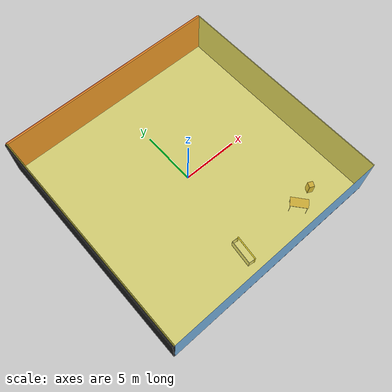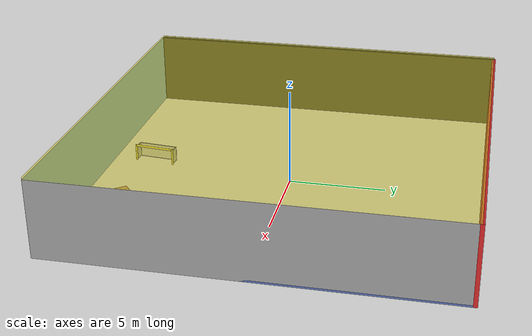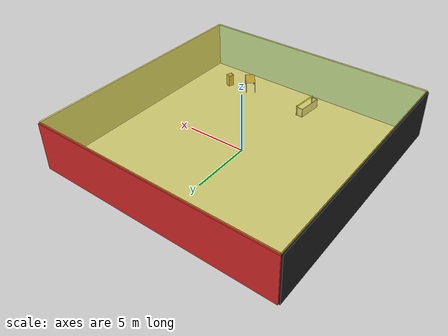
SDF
<sdf version="1.4">
 <world name="default">
  <physics type="ode">
   <max_step_size>0.001</max_step_size>
   <real_time_factor>1</real_time_factor>
   <real_time_update_rate>1000</real_time_update_rate>
   <gravity>0 0 -9.8</gravity>
  </physics>
  <scene><ambient>0.4 0.4 0.4 1</ambient><background>0.7 0.7 0.7 1</background><shadows>1</shadows></scene>
  <model name="Surrounding">
   <static>1</static>
   <link name="Ceiling">
    <collision name="Ceiling_Collision"><geometry><box><size>20 20 0.1</size></box></geometry></collision>
    <visual name="Ceiling_Visual">
     <geometry><box><size>20 20 0.1</size></box></geometry>
     <material>
      <script>
       <uri>file://media/materials/scripts/gazebo.material</uri>
       <name>Gazebo/YellowTransparent</name>
      </script>
     </material>
    </visual>
    <pose>0 0 4.05 0 0 0</pose>
   </link>
   <link name="Wall_South">
    <collision name="Wall_South_Collision">
     <geometry><box><size>20 0 4</size></box></geometry>
     <pose>0 0 2 0 -0 0</pose>
    </collision>
    <visual name="Wall_South_Visual">
     <pose>0 0 2 0 -0 0</pose>
     <geometry><box><size>20 0 4</size></box></geometry>
     <material>
      <script><uri>file://media/materials/scripts/gazebo.material</uri><name>Gazebo/SkyBlue</name></script>
     </material>
    </visual>
    <velocity_decay><linear>0</linear><angular>0</angular></velocity_decay>
    <pose>0 -10 0 0 -0 0</pose>
   </link>
   <link name="Wall_East">
    <collision name="Wall_21_Collision">
     <geometry><box><size>20 0 4</size></box></geometry>
     <pose>0 0 2 0 -0 0</pose>
    </collision>
    <visual name="Wall_21_Visual">
     <pose>0 0 2 0 -0 0</pose>
     <geometry><box><size>20 0 4</size></box></geometry>
     <material>
      <script><uri>file://media/materials/scripts/gazebo.material</uri><name>Gazebo/Grey</name></script>
     </material>
    </visual>
    <velocity_decay><linear>0</linear><angular>0</angular></velocity_decay>
    <pose>10 0 0 0 -0 1.5708</pose>
   </link>
   <link name="Wall_North">
    <collision name="Wall_22_Collision">
     <geometry><box><size>20 0.2 4</size></box></geometry>
     <pose>0 0 2 0 -0 0</pose>
    </collision>
    <visual name="Wall_22_Visual">
     <pose>0 0 2 0 -0 0</pose>
     <geometry><box><size>20 0.2 4</size></box></geometry>
     <material>
      <script><uri>file://media/materials/scripts/gazebo.material</uri><name>Gazebo/RedBright</name></script>
     </material>
    </visual>
    <velocity_decay><linear>0</linear><angular>0</angular></velocity_decay>
    <pose>0 10 0 0 -0 0</pose>
   </link>
   <link name="Wall_West">
    <collision name="Wall_23_Collision">
     <geometry><box><size>20 0.2 4</size></box></geometry>
     <pose>0 0 2 0 -0 0</pose>
    </collision>
    <visual name="Wall_23_Visual">
     <pose>0 0 2 0 -0 0</pose>
     <geometry><box><size>20 0.2 4</size></box></geometry>
     <material>
      <script><uri>file://media/materials/scripts/gazebo.material</uri><name>Gazebo/Black</name></script>
     </material>
    </visual>
    <velocity_decay><linear>0</linear><angular>0</angular></velocity_decay>
    <pose>-10 0 0 0 0 -1.5708</pose>
   </link>
   <link name="Ground_link">
    <collision name="collision">
     <pose>0 0 .05 0 -0 0</pose>
     <geometry><box><size>20 20 0.1</size></box></geometry>
    </collision>
    <visual name="visual">
     <pose>0 0 .05 0 -0 0</pose>
     <geometry><box><size>20 20 0.1</size></box></geometry>
     <material>
      <script><uri>file://media/materials/scripts/gazebo.material</uri><name>Gazebo/BlueTransparent</name></script>
     </material>
    </visual>
   </link>
   <static>1</static>
  </model>
  <spherical_coordinates>
   <surface_model>EARTH_WGS84</surface_model>
   <latitude_deg>0</latitude_deg>
   <longitude_deg>0</longitude_deg>
   <elevation>0</elevation>
   <heading_deg>0</heading_deg>
  </spherical_coordinates>
  <light name="lightball_0" type="diffuse">
   <diffuse>0.8 0.8 0.8 1</diffuse>
   <specular>0.2 0.2 0.2 1</specular>
   <attenuation>
    <range>100</range>
    <constant>0.7</constant>
    <linear>0.01</linear>
    <quadratic>0.001</quadratic>
   </attenuation>
   <direction>-0.5 0.1 -0.9</direction>
   <pose>-6.29825450209 -7.67875696068 2.93628657322 0 0 0</pose>
  </light>
  <light name="lightball_1" type="diffuse">
   <diffuse>0.8 0.8 0.8 1</diffuse>
   <specular>0.2 0.2 0.2 1</specular>
   <attenuation>
    <range>100</range>
    <constant>0.7</constant>
    <linear>0.01</linear>
    <quadratic>0.001</quadratic>
   </attenuation>
   <direction>-0.5 0.1 -0.9</direction>
   <pose>7.89326094423 3.42830210088 2.65780823654 0 0 0</pose>
  </light>
  <light name="lightball_2" type="diffuse">
   <diffuse>0.8 0.8 0.8 1</diffuse>
   <specular>0.2 0.2 0.2 1</specular>
   <attenuation>
    <range>100</range>
    <constant>0.7</constant>
    <linear>0.01</linear>
    <quadratic>0.001</quadratic>
   </attenuation>
   <direction>-0.5 0.1 -0.9</direction>
   <pose>-7.03376420995 2.16458541419 2.96522420775 0 0 0</pose>
  </light>
  <light name="lightball_3" type="diffuse">
   <diffuse>0.8 0.8 0.8 1</diffuse>
   <specular>0.2 0.2 0.2 1</specular>
   <attenuation>
    <range>100</range>
    <constant>0.7</constant>
    <linear>0.01</linear>
    <quadratic>0.001</quadratic>
   </attenuation>
   <direction>-0.5 0.1 -0.9</direction>
   <pose>-2.39658469802 1.64151445667 3.49196372608 0 0 0</pose>
  </light>
  <light name="lightball_4" type="diffuse">
   <diffuse>0.8 0.8 0.8 1</diffuse>
   <specular>0.2 0.2 0.2 1</specular>
   <attenuation>
    <range>100</range>
    <constant>0.7</constant>
    <linear>0.01</linear>
    <quadratic>0.001</quadratic>
   </attenuation>
   <direction>-0.5 0.1 -0.9</direction>
   <pose>2.94295164099 -3.13632376118 1.06405684287 0 0 0</pose>
  </light>
  <light name="lightball_5" type="diffuse">
   <diffuse>0.8 0.8 0.8 1</diffuse>
   <specular>0.2 0.2 0.2 1</specular>
   <attenuation>
    <range>100</range>
    <constant>0.7</constant>
    <linear>0.01</linear>
    <quadratic>0.001</quadratic>
   </attenuation>
   <direction>-0.5 0.1 -0.9</direction>
   <pose>3.75843006989 2.46659435994 1.1008642024 0 0 0</pose>
  </light>
  <light name="lightball_6" type="diffuse">
   <diffuse>0.8 0.8 0.8 1</diffuse>
   <specular>0.2 0.2 0.2 1</specular>
   <attenuation>
    <range>100</range>
    <constant>0.7</constant>
    <linear>0.01</linear>
    <quadratic>0.001</quadratic>
   </attenuation>
   <direction>-0.5 0.1 -0.9</direction>
   <pose>-2.38758750591 5.73126238313 1.70223591651 0 0 0</pose>
  </light>
  <light name="lightball_7" type="diffuse">
   <diffuse>0.8 0.8 0.8 1</diffuse>
   <specular>0.2 0.2 0.2 1</specular>
   <attenuation>
    <range>100</range>
    <constant>0.7</constant>
    <linear>0.01</linear>
    <quadratic>0.001</quadratic>
   </attenuation>
   <direction>-0.5 0.1 -0.9</direction>
   <pose>-5.64229312907 -1.08543398349 0.895239236696 0 0 0</pose>
  </light>
  <include>
   <uri>model://robocup_3Dsim_goal</uri>
   <pose>-0.842881895218 -7.73142110665 0 0 0 3.03894798854</pose>
  </include>
  <include><uri>model://table</uri><pose>4.87848516922 -7.83551400326 0 0 0 2.26058147447</pose></include>
  <include><uri>model://cabinet</uri><pose>6.7576528803 -7.35111714289 0 0 0 2.70118900178</pose></include>
 </world>
</sdf>

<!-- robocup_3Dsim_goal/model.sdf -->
<sdf version="1.5">
  <model name="robocup_3d_goal">
    <static>true</static>
    <link name="left_post">
      <pose>0 1.05 0.45 0 0 0</pose>
      <collision name="collision">
        <geometry>
          <cylinder>
            <radius>0.05</radius>
            <length>0.9</length>
          </cylinder>
        </geometry>
      </collision>
      <visual name="visual">
        <geometry>
          <cylinder>
            <radius>0.05</radius>
            <length>0.9</length>
          </cylinder>
        </geometry>
        <material>
          <script>
            <uri>file://media/materials/scripts/gazebo.material</uri>
            <name>Gazebo/ZincYellow</name>
          </script>
        </material>
      </visual>
    </link>
    <link name="left_support_horiz_lower">
      <pose>0.30 1.05 0.01 0 0 0</pose>
      <collision name="collision">
        <geometry>
          <box>
            <size>0.50 0.02 0.02</size>
          </box>
        </geometry>
      </collision>
      <visual name="visual">
        <geometry>
          <box>
            <size>0.50 0.02 0.02</size>
          </box>
        </geometry>
        <material>
          <script>
            <uri>file://media/materials/scripts/gazebo.material</uri>
            <name>Gazebo/White</name>
          </script>
        </material>
      </visual>
    </link>
    <link name="left_support_horiz_upper">
      <pose>0.30 1.05 0.79 0 0 0</pose>
      <collision name="collision">
        <geometry>
          <box>
            <size>0.50 0.02 0.02</size>
          </box>
        </geometry>
      </collision>
      <visual name="visual">
        <geometry>
          <box>
            <size>0.50 0.02 0.02</size>
          </box>
        </geometry>
        <material>
          <script>
            <uri>file://media/materials/scripts/gazebo.material</uri>
            <name>Gazebo/White</name>
          </script>
        </material>
      </visual>
    </link>
    <link name="left_support_vertical">
      <pose>0.56 1.05 0.4 0 1.5708 0</pose>
      <collision name="collision">
        <geometry>
          <box>
            <size>0.80 0.02 0.02</size>
          </box>
        </geometry>
      </collision>
      <visual name="visual">
        <geometry>
          <box>
            <size>0.80 0.02 0.02</size>
          </box>
        </geometry>
        <material>
          <script>
            <uri>file://media/materials/scripts/gazebo.material</uri>
            <name>Gazebo/White</name>
          </script>
        </material>
      </visual>
    </link>
    <link name="right_support_horiz_lower">
      <pose>0.30 -1.05 0.01 0 0 0</pose>
      <collision name="collision">
        <geometry>
          <box>
            <size>0.50 0.02 0.02</size>
          </box>
        </geometry>
      </collision>
      <visual name="visual">
        <geometry>
          <box>
            <size>0.50 0.02 0.02</size>
          </box>
        </geometry>
        <material>
          <script>
            <uri>file://media/materials/scripts/gazebo.material</uri>
            <name>Gazebo/White</name>
          </script>
        </material>
      </visual>
    </link>
    <link name="right_support_horiz_upper">
      <pose>0.30 -1.05 0.79 0 0 0</pose>
      <collision name="collision">
        <geometry>
          <box>
            <size>0.50 0.02 0.02</size>
          </box>
        </geometry>
      </collision>
      <visual name="visual">
        <geometry>
          <box>
            <size>0.50 0.02 0.02</size>
          </box>
        </geometry>
        <material>
          <script>
            <uri>file://media/materials/scripts/gazebo.material</uri>
            <name>Gazebo/White</name>
          </script>
        </material>
      </visual>
    </link>
    <link name="right_support_vertical">
      <pose>0.56 -1.05 0.4 0 1.5708 0</pose>
      <collision name="collision">
        <geometry>
          <box>
            <size>0.80 0.02 0.02</size>
          </box>
        </geometry>
      </collision>
      <visual name="visual">
        <geometry>
          <box>
            <size>0.80 0.02 0.02</size>
          </box>
        </geometry>
        <material>
          <script>
            <uri>file://media/materials/scripts/gazebo.material</uri>
            <name>Gazebo/White</name>
          </script>
        </material>
      </visual>
    </link>
    <link name="center_support_horiz_lower">
      <pose>0.56 0 0.01 0 1.5708 0</pose>
      <collision name="collision">
        <geometry>
          <box>
            <size>0.02 2.08 0.02</size>
          </box>
        </geometry>
      </collision>
      <visual name="visual">
        <geometry>
          <box>
            <size>0.02 2.08 0.02</size>
          </box>
        </geometry>
        <material>
          <script>
            <uri>file://media/materials/scripts/gazebo.material</uri>
            <name>Gazebo/White</name>
          </script>
        </material>
      </visual>
    </link>
    <link name="center_support_horiz_upper">
      <pose>0.56 0 0.79 0 1.5708 0</pose>
      <collision name="collision">
        <geometry>
          <box>
            <size>0.02 2.08 0.02</size>
          </box>
        </geometry>
      </collision>
      <visual name="visual">
        <geometry>
          <box>
            <size>0.02 2.08 0.02</size>
          </box>
        </geometry>
        <material>
          <script>
            <uri>file://media/materials/scripts/gazebo.material</uri>
            <name>Gazebo/White</name>
          </script>
        </material>
      </visual>
    </link>
    <link name="right_post">
      <pose>0 -1.05 0.45 0 0 0</pose>
      <collision name="collision">
        <geometry>
          <cylinder>
            <radius>0.05</radius>
            <length>0.9</length>
          </cylinder>
        </geometry>
      </collision>
      <visual name="visual">
        <geometry>
          <cylinder>
            <radius>0.05</radius>
            <length>0.9</length>
          </cylinder>
        </geometry>
        <material>
          <script>
            <uri>file://media/materials/scripts/gazebo.material</uri>
            <name>Gazebo/ZincYellow</name>
          </script>
        </material>
      </visual>
    </link>
    <link name="crossbar">
      <pose>0 0 0.85 1.57 1.57 0</pose>
      <collision name="collision">
        <geometry>
          <cylinder>
            <radius>0.05</radius>
            <length>2.0</length>
          </cylinder>
        </geometry>
      </collision>
      <visual name="visual">
        <geometry>
          <cylinder>
            <radius>0.05</radius>
            <length>2.0</length>
          </cylinder>
        </geometry>
        <material>
          <script>
            <uri>file://media/materials/scripts/gazebo.material</uri>
            <name>Gazebo/ZincYellow</name>
          </script>
        </material>
      </visual>
    </link>
    <link name="center_net">
      <pose>0.56 0 0.40 0 0 0</pose>
      <collision name="collision">
        <geometry>
          <box>
            <size>0.01 2.1 0.80</size>
          </box>
        </geometry>
      </collision>
      <visual name="visual">
        <geometry>
          <box>
            <size>0.01 2.1 0.80</size>
          </box>
        </geometry>
        <material>
          <script>
            <uri>model://../model_source/models/robocup09_spl_field/materials/scripts/</uri>
            <uri>model://../model_source/models/robocup09_spl_field/materials/textures/</uri>
            <name>RoboCup/Net</name>
          </script>
        </material>
      </visual>
    </link>
    <link name="left_net">
      <pose>0.30 1.05 0.40 0 0 0</pose>
      <collision name="collision">
        <geometry>
          <box>
            <size>0.50 0.01 0.76</size>
          </box>
        </geometry>
      </collision>
      <visual name="visual">
        <geometry>
          <box>
            <size>0.50 0.01 0.76</size>
          </box>
        </geometry>
        <material>
          <script>
            <uri>model://../model_source/models/robocup09_spl_field/materials/scripts/</uri>
            <uri>model://../model_source/models/robocup09_spl_field/materials/textures/</uri>
            <name>RoboCup/Net</name>
          </script>
        </material>
      </visual>
    </link>
    <link name="right_net">
      <pose>0.30 -1.05 0.40 0 0 0</pose>
      <collision name="collision">
        <geometry>
          <box>
            <size>0.50 0.01 0.76</size>
          </box>
        </geometry>
      </collision>
      <visual name="visual">
        <geometry>
          <box>
            <size>0.50 0.01 0.76</size>
          </box>
        </geometry>
        <material>
          <script>
            <uri>model://../model_source/models/robocup09_spl_field/materials/scripts/</uri>
            <uri>model://../model_source/models/robocup09_spl_field/materials/textures/</uri>
            <name>RoboCup/Net</name>
          </script>
        </material>
      </visual>
    </link>
  </model>
</sdf>

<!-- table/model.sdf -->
<sdf version="1.5">
  <model name="table">
    <static>true</static>
    <link name="link">
      <collision name="surface">
        <pose>0 0 1.0 0 0 0</pose>
        <geometry>
          <box>
            <size>1.5 0.8 0.03</size>
          </box>
        </geometry>
        <surface>
          <friction>
            <ode>
              <mu>0.6</mu>
              <mu2>0.6</mu2>
            </ode>
          </friction>
        </surface>
      </collision>
      <visual name="visual1">
        <pose>0 0 1.0 0 0 0</pose>
        <geometry>
          <box>
            <size>1.5 0.8 0.03</size>
          </box>
        </geometry>
        <material>
          <script>
            <uri>model://media/materials/scripts/gazebo.material</uri>
            <name>Gazebo/Wood</name>
          </script>
        </material>
      </visual>
      <collision name="front_left_leg">
        <pose>0.68 0.38 0.5 0 0 0</pose>
        <geometry>
          <cylinder>
            <radius>0.02</radius>
            <length>1.0</length>
          </cylinder>
        </geometry>
      </collision>
      <visual name="front_left_leg">
        <pose>0.68 0.38 0.5 0 0 0</pose>
        <geometry>
          <cylinder>
            <radius>0.02</radius>
            <length>1.0</length>
          </cylinder>
        </geometry>
        <material>
          <script>
            <uri>model://media/materials/scripts/gazebo.material</uri>
            <name>Gazebo/Grey</name>
          </script>
        </material>
      </visual>
      <collision name="front_right_leg">
        <pose>0.68 -0.38 0.5 0 0 0</pose>
        <geometry>
          <cylinder>
            <radius>0.02</radius>
            <length>1.0</length>
          </cylinder>
        </geometry>
      </collision>
      <visual name="front_right_leg">
        <pose>0.68 -0.38 0.5 0 0 0</pose>
        <geometry>
          <cylinder>
            <radius>0.02</radius>
            <length>1.0</length>
          </cylinder>
        </geometry>
        <material>
          <script>
            <uri>model://media/materials/scripts/gazebo.material</uri>
            <name>Gazebo/Grey</name>
          </script>
        </material>
      </visual>
      <collision name="back_right_leg">
        <pose>-0.68 -0.38 0.5 0 0 0</pose>
        <geometry>
          <cylinder>
            <radius>0.02</radius>
            <length>1.0</length>
          </cylinder>
        </geometry>
      </collision>
      <visual name="back_right_leg">
        <pose>-0.68 -0.38 0.5 0 0 0</pose>
        <geometry>
          <cylinder>
            <radius>0.02</radius>
            <length>1.0</length>
          </cylinder>
        </geometry>
        <material>
          <script>
            <uri>model://media/materials/scripts/gazebo.material</uri>
            <name>Gazebo/Grey</name>
          </script>
        </material>
      </visual>
      <collision name="back_left_leg">
        <pose>-0.68 0.38 0.5 0 0 0</pose>
        <geometry>
          <cylinder>
            <radius>0.02</radius>
            <length>1.0</length>
          </cylinder>
        </geometry>
      </collision>
      <visual name="back_left_leg">
        <pose>-0.68 0.38 0.5 0 0 0</pose>
        <geometry>
          <cylinder>
            <radius>0.02</radius>
            <length>1.0</length>
          </cylinder>
        </geometry>
        <material>
          <script>
            <uri>model://media/materials/scripts/gazebo.material</uri>
            <name>Gazebo/Grey</name>
          </script>
        </material>
      </visual>
    </link>
  </model>
</sdf>

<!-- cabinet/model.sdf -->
<sdf version="1.5">
  <model name="cabinet">
    <static>true</static>
    <link name="cabinet_bottom_plate">
      <inertial>
        <pose>0 0 -1 0 0 0</pose>
        <inertia>
          <ixx>2.050000</ixx>
          <ixy>0</ixy>
          <ixz>0</ixz>
          <iyy>2.050000</iyy>
          <iyz>0</iyz>
          <izz>2.050000</izz>
        </inertia>
        <mass>25.000000</mass>
      </inertial>
      <collision name="cabinet_bottom_plate_geom">
        <pose>0 0 0.010000 0 0 0</pose>
        <geometry>
          <box>
            <size>0.450000 0.450000 0.020000</size>
          </box>
        </geometry>
      </collision>
      <visual name="cabinet_bottom_plate_geom_visual">
        <pose>0 0 0.010000 0 0 0</pose>
        <geometry>
          <box>
            <size>0.450000 0.450000 0.020000</size>
          </box>
        </geometry>
        <material>
          <script>
            <uri>model://media/materials/scripts/gazebo.material</uri>
            <name>Gazebo/Wood</name>
          </script>
        </material>
      </visual>
      <collision name="cabinet_bottom_plate_geom_cabinet_back_plate">
        <pose>0.235000 0 0.510000 0 0 0</pose>
        <geometry>
          <box>
            <size>0.020000 0.450000 1.020000</size>
          </box>
        </geometry>
      </collision>
      <visual name="cabinet_bottom_plate_geom_cabinet_back_plate_visual">
        <pose>0.235000 0 0.510000 0 0 0</pose>
        <geometry>
          <box>
            <size>0.020000 0.450000 1.020000</size>
          </box>
        </geometry>
        <material>
          <script>
            <uri>model://media/materials/scripts/gazebo.material</uri>
            <name>Gazebo/Wood</name>
          </script>
        </material>
      </visual>
      <collision name="cabinet_bottom_plate_geom_cabinet_left_plate">
        <pose>0 0.235000 0.510000 0 0 0</pose>
        <geometry>
          <box>
            <size>0.450000 0.020000 1.020000</size>
          </box>
        </geometry>
      </collision>
      <visual name="cabinet_bottom_plate_geom_cabinet_left_plate_visual">
        <pose>0 0.235000 0.510000 0 0 0</pose>
        <geometry>
          <box>
            <size>0.450000 0.020000 1.020000</size>
          </box>
        </geometry>
        <material>
          <script>
            <uri>model://media/materials/scripts/gazebo.material</uri>
            <name>Gazebo/Wood</name>
          </script>
        </material>
      </visual>
      <collision name="cabinet_bottom_plate_geom_cabinet_middle_plate">
        <pose>0 0 0.510000 0 0 0</pose>
        <geometry>
          <box>
            <size>0.450000 0.450000 0.020000</size>
          </box>
        </geometry>
      </collision>
      <visual name="cabinet_bottom_plate_geom_cabinet_middle_plate_visual">
        <pose>0 0 0.510000 0 0 0</pose>
        <geometry>
          <box>
            <size>0.450000 0.450000 0.020000</size>
          </box>
        </geometry>
        <material>
          <script>
            <uri>model://media/materials/scripts/gazebo.material</uri>
            <name>Gazebo/Wood</name>
          </script>
        </material>
      </visual>
      <collision name="cabinet_bottom_plate_geom_cabinet_right_plate">
        <pose>0 -0.235000 0.510000 0 0 0</pose>
        <geometry>
          <box>
            <size>0.450000 0.020000 1.020000</size>
          </box>
        </geometry>
      </collision>
      <visual name="cabinet_bottom_plate_geom_cabinet_right_plate_visual">
        <pose>0 -0.235000 0.510000 0 0 0</pose>
        <geometry>
          <box>
            <size>0.450000 0.020000 1.020000</size>
          </box>
        </geometry>
        <material>
          <script>
            <uri>model://media/materials/scripts/gazebo.material</uri>
            <name>Gazebo/Wood</name>
          </script>
        </material>
      </visual>
      <collision name="cabinet_bottom_plate_geom_cabinet_top_plate">
        <pose>0 0 1.010000 0 0 0</pose>
        <geometry>
          <box>
            <size>0.450000 0.450000 0.020000</size>
          </box>
        </geometry>
      </collision>
      <visual name="cabinet_bottom_plate_geom_cabinet_top_plate_visual">
        <pose>0 0 1.010000 0 0 0</pose>
        <geometry>
          <box>
            <size>0.450000 0.450000 0.020000</size>
          </box>
        </geometry>
        <material>
          <script>
            <uri>model://media/materials/scripts/gazebo.material</uri>
            <name>Gazebo/Wood</name>
          </script>
        </material>
      </visual>
    </link>
  </model>
</sdf>
